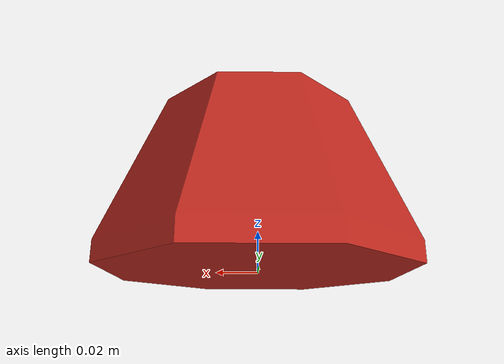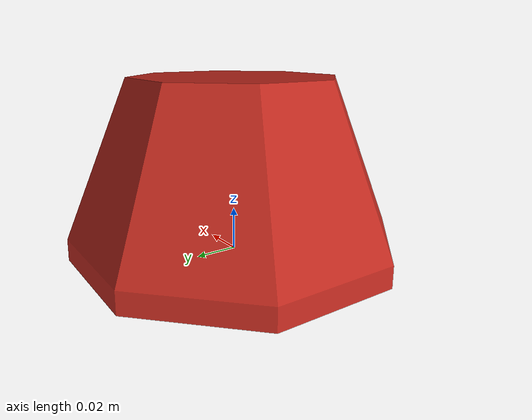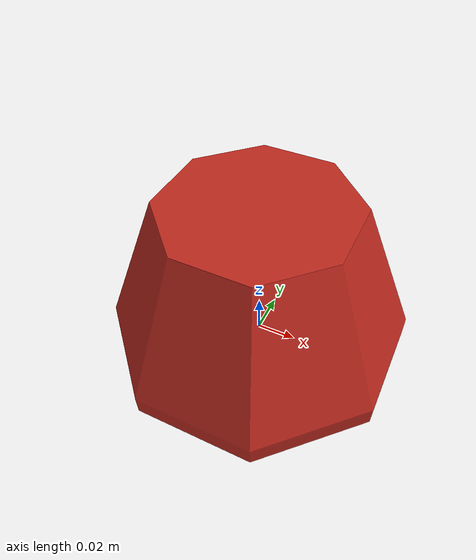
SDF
<?xml version="1.0" ?>
<sdf version="1.7">
  <model name="goal-alliance-red">
    <static>true</static>
    <link name="body">
      <pose>0 0 0 0 0 0</pose>
      <visual name="visual">
        <geometry>
          <mesh>
            <uri>model://goal-alliance-red/meshes/goal.stl</uri>
          </mesh>
        </geometry>
        <material>
        <ambient>0.75 0.16 0.12 1</ambient>
        <diffuse>0.75 0.16 0.12 1</diffuse>
        <specular>0.1 0.1 0.1 1.0</specular>
        <emissive>0 0 0 1</emissive>
      </material>
      </visual>
      <visual name="receptacle">
        <pose>0 0 0.07250000000000001 0 0 0</pose>
        <geometry>
          <cylinder>
            <radius>0.030</radius>
            <length>0.008</length>
          </cylinder>
        </geometry>
        <material>
        <ambient>0.08 0.08 0.08 1</ambient>
        <diffuse>0.08 0.08 0.08 1</diffuse>
        <specular>0.1 0.1 0.1 1.0</specular>
        <emissive>0 0 0 1</emissive>
      </material>
      </visual>
      <collision name="collision">
        <pose>0 0 0.04125 0 0 0</pose>
        <geometry>
          <cylinder>
            <radius>0.0715</radius>
            <length>0.0825</length>
          </cylinder>
        </geometry>
        <surface>
          <friction>
            <ode>
              <mu>0.8</mu>
              <mu2>0.8</mu2>
            </ode>
          </friction>
        </surface>
      </collision>
    </link>
  </model>
</sdf>
